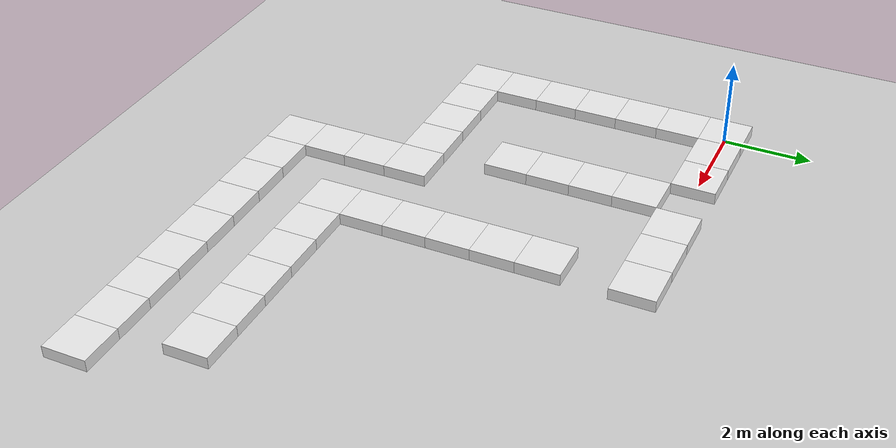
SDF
<?xml version="1.0" ?>
    <sdf version="1.6">
    <world name="default">
        <!-- Define a simple ground plane -->
        <include>
        <uri>model://ground_plane</uri>
        </include>

                    <model name="maze_wall_0_0">
                    <static>true</static>
                    <link name="link">
                        <collision name="collision">
                        <geometry>
                            <box>
                            <size>1 1 0.5</size>
                            </box>
                        </geometry>
                        </collision>
                        <visual name="visual">
                        <geometry>
                            <box>
                            <size>1 1 0.5</size>
                            </box>
                        </geometry>
                        <material>
                            <script>
                            <uri>file://media/materials/scripts/gazebo.material</uri>
                            <name>Gazebo/White</name>
                            </script>
                        </material>
                        </visual>
                    </link>
                    <pose>0 0 0 0 0 0</pose>
                    </model>

                    <model name="maze_wall_1_0">
                    <static>true</static>
                    <link name="link">
                        <collision name="collision">
                        <geometry>
                            <box>
                            <size>1 1 0.5</size>
                            </box>
                        </geometry>
                        </collision>
                        <visual name="visual">
                        <geometry>
                            <box>
                            <size>1 1 0.5</size>
                            </box>
                        </geometry>
                        <material>
                            <script>
                            <uri>file://media/materials/scripts/gazebo.material</uri>
                            <name>Gazebo/White</name>
                            </script>
                        </material>
                        </visual>
                    </link>
                    <pose>1 0 0 0 0 0</pose>
                    </model>

                    <model name="maze_wall_2_0">
                    <static>true</static>
                    <link name="link">
                        <collision name="collision">
                        <geometry>
                            <box>
                            <size>1 1 0.5</size>
                            </box>
                        </geometry>
                        </collision>
                        <visual name="visual">
                        <geometry>
                            <box>
                            <size>1 1 0.5</size>
                            </box>
                        </geometry>
                        <material>
                            <script>
                            <uri>file://media/materials/scripts/gazebo.material</uri>
                            <name>Gazebo/White</name>
                            </script>
                        </material>
                        </visual>
                    </link>
                    <pose>2 0 0 0 0 0</pose>
                    </model>

                    <model name="maze_wall_4_0">
                    <static>true</static>
                    <link name="link">
                        <collision name="collision">
                        <geometry>
                            <box>
                            <size>1 1 0.5</size>
                            </box>
                        </geometry>
                        </collision>
                        <visual name="visual">
                        <geometry>
                            <box>
                            <size>1 1 0.5</size>
                            </box>
                        </geometry>
                        <material>
                            <script>
                            <uri>file://media/materials/scripts/gazebo.material</uri>
                            <name>Gazebo/White</name>
                            </script>
                        </material>
                        </visual>
                    </link>
                    <pose>4 0 0 0 0 0</pose>
                    </model>

                    <model name="maze_wall_5_0">
                    <static>true</static>
                    <link name="link">
                        <collision name="collision">
                        <geometry>
                            <box>
                            <size>1 1 0.5</size>
                            </box>
                        </geometry>
                        </collision>
                        <visual name="visual">
                        <geometry>
                            <box>
                            <size>1 1 0.5</size>
                            </box>
                        </geometry>
                        <material>
                            <script>
                            <uri>file://media/materials/scripts/gazebo.material</uri>
                            <name>Gazebo/White</name>
                            </script>
                        </material>
                        </visual>
                    </link>
                    <pose>5 0 0 0 0 0</pose>
                    </model>

                    <model name="maze_wall_6_0">
                    <static>true</static>
                    <link name="link">
                        <collision name="collision">
                        <geometry>
                            <box>
                            <size>1 1 0.5</size>
                            </box>
                        </geometry>
                        </collision>
                        <visual name="visual">
                        <geometry>
                            <box>
                            <size>1 1 0.5</size>
                            </box>
                        </geometry>
                        <material>
                            <script>
                            <uri>file://media/materials/scripts/gazebo.material</uri>
                            <name>Gazebo/White</name>
                            </script>
                        </material>
                        </visual>
                    </link>
                    <pose>6 0 0 0 0 0</pose>
                    </model>

                    <model name="maze_wall_0_-1">
                    <static>true</static>
                    <link name="link">
                        <collision name="collision">
                        <geometry>
                            <box>
                            <size>1 1 0.5</size>
                            </box>
                        </geometry>
                        </collision>
                        <visual name="visual">
                        <geometry>
                            <box>
                            <size>1 1 0.5</size>
                            </box>
                        </geometry>
                        <material>
                            <script>
                            <uri>file://media/materials/scripts/gazebo.material</uri>
                            <name>Gazebo/White</name>
                            </script>
                        </material>
                        </visual>
                    </link>
                    <pose>0 -1 0 0 0 0</pose>
                    </model>

                    <model name="maze_wall_3_-1">
                    <static>true</static>
                    <link name="link">
                        <collision name="collision">
                        <geometry>
                            <box>
                            <size>1 1 0.5</size>
                            </box>
                        </geometry>
                        </collision>
                        <visual name="visual">
                        <geometry>
                            <box>
                            <size>1 1 0.5</size>
                            </box>
                        </geometry>
                        <material>
                            <script>
                            <uri>file://media/materials/scripts/gazebo.material</uri>
                            <name>Gazebo/White</name>
                            </script>
                        </material>
                        </visual>
                    </link>
                    <pose>3 -1 0 0 0 0</pose>
                    </model>

                    <model name="maze_wall_0_-2">
                    <static>true</static>
                    <link name="link">
                        <collision name="collision">
                        <geometry>
                            <box>
                            <size>1 1 0.5</size>
                            </box>
                        </geometry>
                        </collision>
                        <visual name="visual">
                        <geometry>
                            <box>
                            <size>1 1 0.5</size>
                            </box>
                        </geometry>
                        <material>
                            <script>
                            <uri>file://media/materials/scripts/gazebo.material</uri>
                            <name>Gazebo/White</name>
                            </script>
                        </material>
                        </visual>
                    </link>
                    <pose>0 -2 0 0 0 0</pose>
                    </model>

                    <model name="maze_wall_3_-2">
                    <static>true</static>
                    <link name="link">
                        <collision name="collision">
                        <geometry>
                            <box>
                            <size>1 1 0.5</size>
                            </box>
                        </geometry>
                        </collision>
                        <visual name="visual">
                        <geometry>
                            <box>
                            <size>1 1 0.5</size>
                            </box>
                        </geometry>
                        <material>
                            <script>
                            <uri>file://media/materials/scripts/gazebo.material</uri>
                            <name>Gazebo/White</name>
                            </script>
                        </material>
                        </visual>
                    </link>
                    <pose>3 -2 0 0 0 0</pose>
                    </model>

                    <model name="maze_wall_6_-2">
                    <static>true</static>
                    <link name="link">
                        <collision name="collision">
                        <geometry>
                            <box>
                            <size>1 1 0.5</size>
                            </box>
                        </geometry>
                        </collision>
                        <visual name="visual">
                        <geometry>
                            <box>
                            <size>1 1 0.5</size>
                            </box>
                        </geometry>
                        <material>
                            <script>
                            <uri>file://media/materials/scripts/gazebo.material</uri>
                            <name>Gazebo/White</name>
                            </script>
                        </material>
                        </visual>
                    </link>
                    <pose>6 -2 0 0 0 0</pose>
                    </model>

                    <model name="maze_wall_0_-3">
                    <static>true</static>
                    <link name="link">
                        <collision name="collision">
                        <geometry>
                            <box>
                            <size>1 1 0.5</size>
                            </box>
                        </geometry>
                        </collision>
                        <visual name="visual">
                        <geometry>
                            <box>
                            <size>1 1 0.5</size>
                            </box>
                        </geometry>
                        <material>
                            <script>
                            <uri>file://media/materials/scripts/gazebo.material</uri>
                            <name>Gazebo/White</name>
                            </script>
                        </material>
                        </visual>
                    </link>
                    <pose>0 -3 0 0 0 0</pose>
                    </model>

                    <model name="maze_wall_3_-3">
                    <static>true</static>
                    <link name="link">
                        <collision name="collision">
                        <geometry>
                            <box>
                            <size>1 1 0.5</size>
                            </box>
                        </geometry>
                        </collision>
                        <visual name="visual">
                        <geometry>
                            <box>
                            <size>1 1 0.5</size>
                            </box>
                        </geometry>
                        <material>
                            <script>
                            <uri>file://media/materials/scripts/gazebo.material</uri>
                            <name>Gazebo/White</name>
                            </script>
                        </material>
                        </visual>
                    </link>
                    <pose>3 -3 0 0 0 0</pose>
                    </model>

                    <model name="maze_wall_6_-3">
                    <static>true</static>
                    <link name="link">
                        <collision name="collision">
                        <geometry>
                            <box>
                            <size>1 1 0.5</size>
                            </box>
                        </geometry>
                        </collision>
                        <visual name="visual">
                        <geometry>
                            <box>
                            <size>1 1 0.5</size>
                            </box>
                        </geometry>
                        <material>
                            <script>
                            <uri>file://media/materials/scripts/gazebo.material</uri>
                            <name>Gazebo/White</name>
                            </script>
                        </material>
                        </visual>
                    </link>
                    <pose>6 -3 0 0 0 0</pose>
                    </model>

                    <model name="maze_wall_0_-4">
                    <static>true</static>
                    <link name="link">
                        <collision name="collision">
                        <geometry>
                            <box>
                            <size>1 1 0.5</size>
                            </box>
                        </geometry>
                        </collision>
                        <visual name="visual">
                        <geometry>
                            <box>
                            <size>1 1 0.5</size>
                            </box>
                        </geometry>
                        <material>
                            <script>
                            <uri>file://media/materials/scripts/gazebo.material</uri>
                            <name>Gazebo/White</name>
                            </script>
                        </material>
                        </visual>
                    </link>
                    <pose>0 -4 0 0 0 0</pose>
                    </model>

                    <model name="maze_wall_3_-4">
                    <static>true</static>
                    <link name="link">
                        <collision name="collision">
                        <geometry>
                            <box>
                            <size>1 1 0.5</size>
                            </box>
                        </geometry>
                        </collision>
                        <visual name="visual">
                        <geometry>
                            <box>
                            <size>1 1 0.5</size>
                            </box>
                        </geometry>
                        <material>
                            <script>
                            <uri>file://media/materials/scripts/gazebo.material</uri>
                            <name>Gazebo/White</name>
                            </script>
                        </material>
                        </visual>
                    </link>
                    <pose>3 -4 0 0 0 0</pose>
                    </model>

                    <model name="maze_wall_6_-4">
                    <static>true</static>
                    <link name="link">
                        <collision name="collision">
                        <geometry>
                            <box>
                            <size>1 1 0.5</size>
                            </box>
                        </geometry>
                        </collision>
                        <visual name="visual">
                        <geometry>
                            <box>
                            <size>1 1 0.5</size>
                            </box>
                        </geometry>
                        <material>
                            <script>
                            <uri>file://media/materials/scripts/gazebo.material</uri>
                            <name>Gazebo/White</name>
                            </script>
                        </material>
                        </visual>
                    </link>
                    <pose>6 -4 0 0 0 0</pose>
                    </model>

                    <model name="maze_wall_0_-5">
                    <static>true</static>
                    <link name="link">
                        <collision name="collision">
                        <geometry>
                            <box>
                            <size>1 1 0.5</size>
                            </box>
                        </geometry>
                        </collision>
                        <visual name="visual">
                        <geometry>
                            <box>
                            <size>1 1 0.5</size>
                            </box>
                        </geometry>
                        <material>
                            <script>
                            <uri>file://media/materials/scripts/gazebo.material</uri>
                            <name>Gazebo/White</name>
                            </script>
                        </material>
                        </visual>
                    </link>
                    <pose>0 -5 0 0 0 0</pose>
                    </model>

                    <model name="maze_wall_6_-5">
                    <static>true</static>
                    <link name="link">
                        <collision name="collision">
                        <geometry>
                            <box>
                            <size>1 1 0.5</size>
                            </box>
                        </geometry>
                        </collision>
                        <visual name="visual">
                        <geometry>
                            <box>
                            <size>1 1 0.5</size>
                            </box>
                        </geometry>
                        <material>
                            <script>
                            <uri>file://media/materials/scripts/gazebo.material</uri>
                            <name>Gazebo/White</name>
                            </script>
                        </material>
                        </visual>
                    </link>
                    <pose>6 -5 0 0 0 0</pose>
                    </model>

                    <model name="maze_wall_0_-6">
                    <static>true</static>
                    <link name="link">
                        <collision name="collision">
                        <geometry>
                            <box>
                            <size>1 1 0.5</size>
                            </box>
                        </geometry>
                        </collision>
                        <visual name="visual">
                        <geometry>
                            <box>
                            <size>1 1 0.5</size>
                            </box>
                        </geometry>
                        <material>
                            <script>
                            <uri>file://media/materials/scripts/gazebo.material</uri>
                            <name>Gazebo/White</name>
                            </script>
                        </material>
                        </visual>
                    </link>
                    <pose>0 -6 0 0 0 0</pose>
                    </model>

                    <model name="maze_wall_1_-6">
                    <static>true</static>
                    <link name="link">
                        <collision name="collision">
                        <geometry>
                            <box>
                            <size>1 1 0.5</size>
                            </box>
                        </geometry>
                        </collision>
                        <visual name="visual">
                        <geometry>
                            <box>
                            <size>1 1 0.5</size>
                            </box>
                        </geometry>
                        <material>
                            <script>
                            <uri>file://media/materials/scripts/gazebo.material</uri>
                            <name>Gazebo/White</name>
                            </script>
                        </material>
                        </visual>
                    </link>
                    <pose>1 -6 0 0 0 0</pose>
                    </model>

                    <model name="maze_wall_2_-6">
                    <static>true</static>
                    <link name="link">
                        <collision name="collision">
                        <geometry>
                            <box>
                            <size>1 1 0.5</size>
                            </box>
                        </geometry>
                        </collision>
                        <visual name="visual">
                        <geometry>
                            <box>
                            <size>1 1 0.5</size>
                            </box>
                        </geometry>
                        <material>
                            <script>
                            <uri>file://media/materials/scripts/gazebo.material</uri>
                            <name>Gazebo/White</name>
                            </script>
                        </material>
                        </visual>
                    </link>
                    <pose>2 -6 0 0 0 0</pose>
                    </model>

                    <model name="maze_wall_3_-6">
                    <static>true</static>
                    <link name="link">
                        <collision name="collision">
                        <geometry>
                            <box>
                            <size>1 1 0.5</size>
                            </box>
                        </geometry>
                        </collision>
                        <visual name="visual">
                        <geometry>
                            <box>
                            <size>1 1 0.5</size>
                            </box>
                        </geometry>
                        <material>
                            <script>
                            <uri>file://media/materials/scripts/gazebo.material</uri>
                            <name>Gazebo/White</name>
                            </script>
                        </material>
                        </visual>
                    </link>
                    <pose>3 -6 0 0 0 0</pose>
                    </model>

                    <model name="maze_wall_4_-6">
                    <static>true</static>
                    <link name="link">
                        <collision name="collision">
                        <geometry>
                            <box>
                            <size>1 1 0.5</size>
                            </box>
                        </geometry>
                        </collision>
                        <visual name="visual">
                        <geometry>
                            <box>
                            <size>1 1 0.5</size>
                            </box>
                        </geometry>
                        <material>
                            <script>
                            <uri>file://media/materials/scripts/gazebo.material</uri>
                            <name>Gazebo/White</name>
                            </script>
                        </material>
                        </visual>
                    </link>
                    <pose>4 -6 0 0 0 0</pose>
                    </model>

                    <model name="maze_wall_6_-6">
                    <static>true</static>
                    <link name="link">
                        <collision name="collision">
                        <geometry>
                            <box>
                            <size>1 1 0.5</size>
                            </box>
                        </geometry>
                        </collision>
                        <visual name="visual">
                        <geometry>
                            <box>
                            <size>1 1 0.5</size>
                            </box>
                        </geometry>
                        <material>
                            <script>
                            <uri>file://media/materials/scripts/gazebo.material</uri>
                            <name>Gazebo/White</name>
                            </script>
                        </material>
                        </visual>
                    </link>
                    <pose>6 -6 0 0 0 0</pose>
                    </model>

                    <model name="maze_wall_4_-7">
                    <static>true</static>
                    <link name="link">
                        <collision name="collision">
                        <geometry>
                            <box>
                            <size>1 1 0.5</size>
                            </box>
                        </geometry>
                        </collision>
                        <visual name="visual">
                        <geometry>
                            <box>
                            <size>1 1 0.5</size>
                            </box>
                        </geometry>
                        <material>
                            <script>
                            <uri>file://media/materials/scripts/gazebo.material</uri>
                            <name>Gazebo/White</name>
                            </script>
                        </material>
                        </visual>
                    </link>
                    <pose>4 -7 0 0 0 0</pose>
                    </model>

                    <model name="maze_wall_6_-7">
                    <static>true</static>
                    <link name="link">
                        <collision name="collision">
                        <geometry>
                            <box>
                            <size>1 1 0.5</size>
                            </box>
                        </geometry>
                        </collision>
                        <visual name="visual">
                        <geometry>
                            <box>
                            <size>1 1 0.5</size>
                            </box>
                        </geometry>
                        <material>
                            <script>
                            <uri>file://media/materials/scripts/gazebo.material</uri>
                            <name>Gazebo/White</name>
                            </script>
                        </material>
                        </visual>
                    </link>
                    <pose>6 -7 0 0 0 0</pose>
                    </model>

                    <model name="maze_wall_7_-7">
                    <static>true</static>
                    <link name="link">
                        <collision name="collision">
                        <geometry>
                            <box>
                            <size>1 1 0.5</size>
                            </box>
                        </geometry>
                        </collision>
                        <visual name="visual">
                        <geometry>
                            <box>
                            <size>1 1 0.5</size>
                            </box>
                        </geometry>
                        <material>
                            <script>
                            <uri>file://media/materials/scripts/gazebo.material</uri>
                            <name>Gazebo/White</name>
                            </script>
                        </material>
                        </visual>
                    </link>
                    <pose>7 -7 0 0 0 0</pose>
                    </model>

                    <model name="maze_wall_8_-7">
                    <static>true</static>
                    <link name="link">
                        <collision name="collision">
                        <geometry>
                            <box>
                            <size>1 1 0.5</size>
                            </box>
                        </geometry>
                        </collision>
                        <visual name="visual">
                        <geometry>
                            <box>
                            <size>1 1 0.5</size>
                            </box>
                        </geometry>
                        <material>
                            <script>
                            <uri>file://media/materials/scripts/gazebo.material</uri>
                            <name>Gazebo/White</name>
                            </script>
                        </material>
                        </visual>
                    </link>
                    <pose>8 -7 0 0 0 0</pose>
                    </model>

                    <model name="maze_wall_9_-7">
                    <static>true</static>
                    <link name="link">
                        <collision name="collision">
                        <geometry>
                            <box>
                            <size>1 1 0.5</size>
                            </box>
                        </geometry>
                        </collision>
                        <visual name="visual">
                        <geometry>
                            <box>
                            <size>1 1 0.5</size>
                            </box>
                        </geometry>
                        <material>
                            <script>
                            <uri>file://media/materials/scripts/gazebo.material</uri>
                            <name>Gazebo/White</name>
                            </script>
                        </material>
                        </visual>
                    </link>
                    <pose>9 -7 0 0 0 0</pose>
                    </model>

                    <model name="maze_wall_10_-7">
                    <static>true</static>
                    <link name="link">
                        <collision name="collision">
                        <geometry>
                            <box>
                            <size>1 1 0.5</size>
                            </box>
                        </geometry>
                        </collision>
                        <visual name="visual">
                        <geometry>
                            <box>
                            <size>1 1 0.5</size>
                            </box>
                        </geometry>
                        <material>
                            <script>
                            <uri>file://media/materials/scripts/gazebo.material</uri>
                            <name>Gazebo/White</name>
                            </script>
                        </material>
                        </visual>
                    </link>
                    <pose>10 -7 0 0 0 0</pose>
                    </model>

                    <model name="maze_wall_11_-7">
                    <static>true</static>
                    <link name="link">
                        <collision name="collision">
                        <geometry>
                            <box>
                            <size>1 1 0.5</size>
                            </box>
                        </geometry>
                        </collision>
                        <visual name="visual">
                        <geometry>
                            <box>
                            <size>1 1 0.5</size>
                            </box>
                        </geometry>
                        <material>
                            <script>
                            <uri>file://media/materials/scripts/gazebo.material</uri>
                            <name>Gazebo/White</name>
                            </script>
                        </material>
                        </visual>
                    </link>
                    <pose>11 -7 0 0 0 0</pose>
                    </model>

                    <model name="maze_wall_4_-8">
                    <static>true</static>
                    <link name="link">
                        <collision name="collision">
                        <geometry>
                            <box>
                            <size>1 1 0.5</size>
                            </box>
                        </geometry>
                        </collision>
                        <visual name="visual">
                        <geometry>
                            <box>
                            <size>1 1 0.5</size>
                            </box>
                        </geometry>
                        <material>
                            <script>
                            <uri>file://media/materials/scripts/gazebo.material</uri>
                            <name>Gazebo/White</name>
                            </script>
                        </material>
                        </visual>
                    </link>
                    <pose>4 -8 0 0 0 0</pose>
                    </model>

                    <model name="maze_wall_4_-9">
                    <static>true</static>
                    <link name="link">
                        <collision name="collision">
                        <geometry>
                            <box>
                            <size>1 1 0.5</size>
                            </box>
                        </geometry>
                        </collision>
                        <visual name="visual">
                        <geometry>
                            <box>
                            <size>1 1 0.5</size>
                            </box>
                        </geometry>
                        <material>
                            <script>
                            <uri>file://media/materials/scripts/gazebo.material</uri>
                            <name>Gazebo/White</name>
                            </script>
                        </material>
                        </visual>
                    </link>
                    <pose>4 -9 0 0 0 0</pose>
                    </model>

                    <model name="maze_wall_5_-9">
                    <static>true</static>
                    <link name="link">
                        <collision name="collision">
                        <geometry>
                            <box>
                            <size>1 1 0.5</size>
                            </box>
                        </geometry>
                        </collision>
                        <visual name="visual">
                        <geometry>
                            <box>
                            <size>1 1 0.5</size>
                            </box>
                        </geometry>
                        <material>
                            <script>
                            <uri>file://media/materials/scripts/gazebo.material</uri>
                            <name>Gazebo/White</name>
                            </script>
                        </material>
                        </visual>
                    </link>
                    <pose>5 -9 0 0 0 0</pose>
                    </model>

                    <model name="maze_wall_6_-9">
                    <static>true</static>
                    <link name="link">
                        <collision name="collision">
                        <geometry>
                            <box>
                            <size>1 1 0.5</size>
                            </box>
                        </geometry>
                        </collision>
                        <visual name="visual">
                        <geometry>
                            <box>
                            <size>1 1 0.5</size>
                            </box>
                        </geometry>
                        <material>
                            <script>
                            <uri>file://media/materials/scripts/gazebo.material</uri>
                            <name>Gazebo/White</name>
                            </script>
                        </material>
                        </visual>
                    </link>
                    <pose>6 -9 0 0 0 0</pose>
                    </model>

                    <model name="maze_wall_7_-9">
                    <static>true</static>
                    <link name="link">
                        <collision name="collision">
                        <geometry>
                            <box>
                            <size>1 1 0.5</size>
                            </box>
                        </geometry>
                        </collision>
                        <visual name="visual">
                        <geometry>
                            <box>
                            <size>1 1 0.5</size>
                            </box>
                        </geometry>
                        <material>
                            <script>
                            <uri>file://media/materials/scripts/gazebo.material</uri>
                            <name>Gazebo/White</name>
                            </script>
                        </material>
                        </visual>
                    </link>
                    <pose>7 -9 0 0 0 0</pose>
                    </model>

                    <model name="maze_wall_8_-9">
                    <static>true</static>
                    <link name="link">
                        <collision name="collision">
                        <geometry>
                            <box>
                            <size>1 1 0.5</size>
                            </box>
                        </geometry>
                        </collision>
                        <visual name="visual">
                        <geometry>
                            <box>
                            <size>1 1 0.5</size>
                            </box>
                        </geometry>
                        <material>
                            <script>
                            <uri>file://media/materials/scripts/gazebo.material</uri>
                            <name>Gazebo/White</name>
                            </script>
                        </material>
                        </visual>
                    </link>
                    <pose>8 -9 0 0 0 0</pose>
                    </model>

                    <model name="maze_wall_9_-9">
                    <static>true</static>
                    <link name="link">
                        <collision name="collision">
                        <geometry>
                            <box>
                            <size>1 1 0.5</size>
                            </box>
                        </geometry>
                        </collision>
                        <visual name="visual">
                        <geometry>
                            <box>
                            <size>1 1 0.5</size>
                            </box>
                        </geometry>
                        <material>
                            <script>
                            <uri>file://media/materials/scripts/gazebo.material</uri>
                            <name>Gazebo/White</name>
                            </script>
                        </material>
                        </visual>
                    </link>
                    <pose>9 -9 0 0 0 0</pose>
                    </model>

                    <model name="maze_wall_10_-9">
                    <static>true</static>
                    <link name="link">
                        <collision name="collision">
                        <geometry>
                            <box>
                            <size>1 1 0.5</size>
                            </box>
                        </geometry>
                        </collision>
                        <visual name="visual">
                        <geometry>
                            <box>
                            <size>1 1 0.5</size>
                            </box>
                        </geometry>
                        <material>
                            <script>
                            <uri>file://media/materials/scripts/gazebo.material</uri>
                            <name>Gazebo/White</name>
                            </script>
                        </material>
                        </visual>
                    </link>
                    <pose>10 -9 0 0 0 0</pose>
                    </model>

                    <model name="maze_wall_11_-9">
                    <static>true</static>
                    <link name="link">
                        <collision name="collision">
                        <geometry>
                            <box>
                            <size>1 1 0.5</size>
                            </box>
                        </geometry>
                        </collision>
                        <visual name="visual">
                        <geometry>
                            <box>
                            <size>1 1 0.5</size>
                            </box>
                        </geometry>
                        <material>
                            <script>
                            <uri>file://media/materials/scripts/gazebo.material</uri>
                            <name>Gazebo/White</name>
                            </script>
                        </material>
                        </visual>
                    </link>
                    <pose>11 -9 0 0 0 0</pose>
                    </model>

                    <model name="maze_wall_12_-9">
                    <static>true</static>
                    <link name="link">
                        <collision name="collision">
                        <geometry>
                            <box>
                            <size>1 1 0.5</size>
                            </box>
                        </geometry>
                        </collision>
                        <visual name="visual">
                        <geometry>
                            <box>
                            <size>1 1 0.5</size>
                            </box>
                        </geometry>
                        <material>
                            <script>
                            <uri>file://media/materials/scripts/gazebo.material</uri>
                            <name>Gazebo/White</name>
                            </script>
                        </material>
                        </visual>
                    </link>
                    <pose>12 -9 0 0 0 0</pose>
                    </model>

    </world>
    </sdf>
